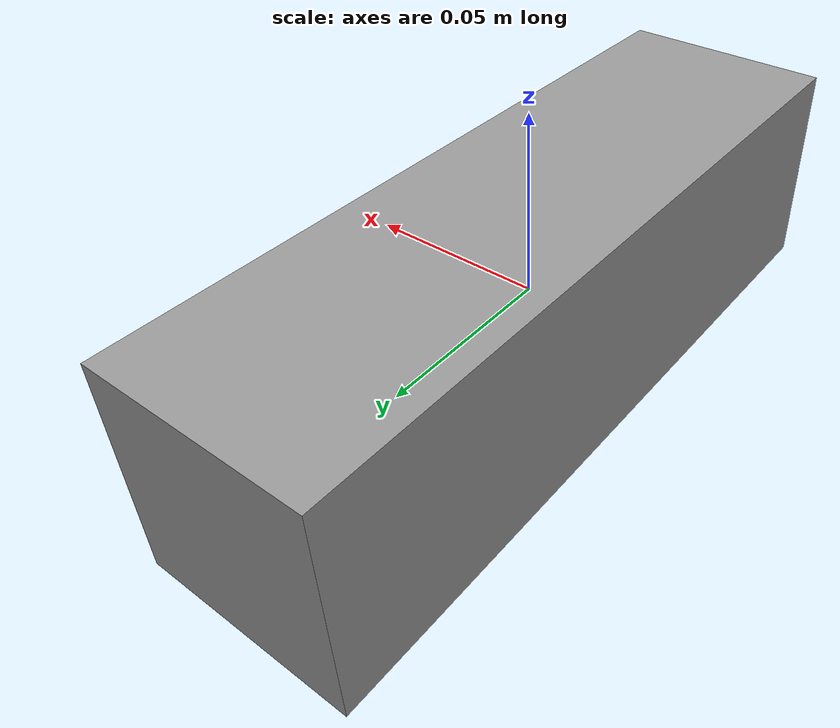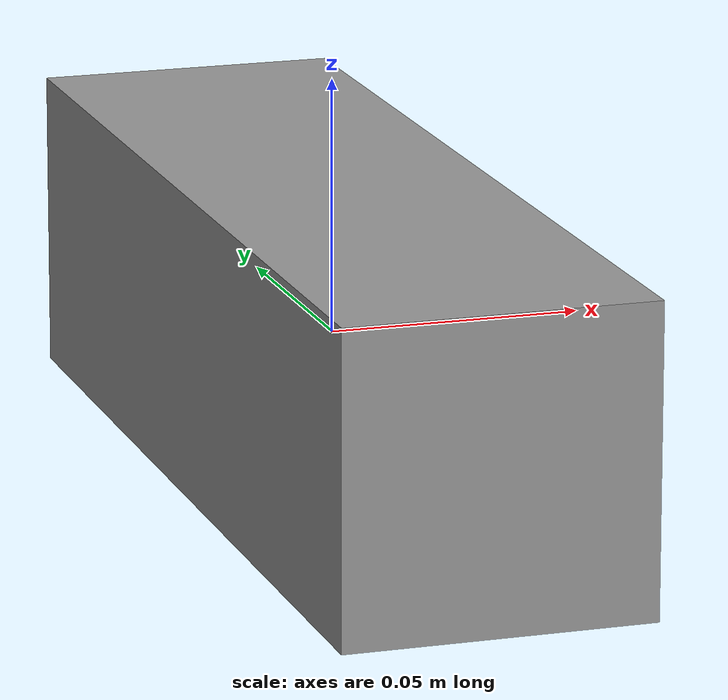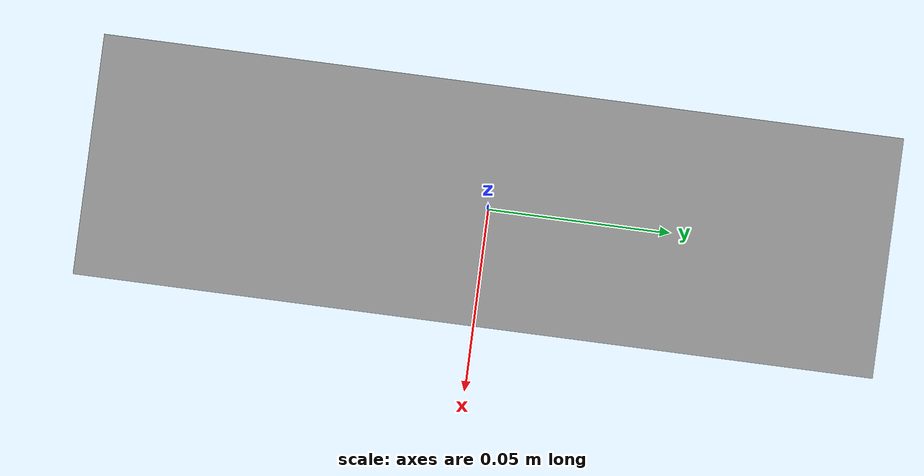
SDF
<?xml version="1.0" ?>
<sdf version="1.5">
    <model name="lrf">
    <static>false</static>

    <link name="lrf_phantom_base">
    </link>

    <joint name="lrf_phantom_base_to_lrf" type="fixed">
        <parent>lrf_phantom_base</parent>
        <child>lrf_lrf</child>
    </joint>

    <link name="lrf_lrf">

        <collision name="collision">
            <geometry>
                <box>
                    <size>0.06 0.20 0.06</size>
                </box>
            </geometry>
        </collision>

        <intertial>
            <mass>1.5</mass>
        </intertial>

        <visual name="visual-lrf">
            <geometry>
                <box>
                    <size>0.06 0.20 0.06</size>
                </box>
            </geometry>
            <material>
                <script>
                    <uri>file://media/materials/scripts/gazebo.material</uri>
                    <name>Gazebo/Grey</name>
                </script>
            </material>
        </visual>

    </link>

    <joint name="lrf_phantom_base_to_sensor" type="fixed">
        <parent>lrf_phantom_base</parent>
        <child>lrf_sensor</child>
    </joint>

    <link name="lrf_sensor">
        <pose>0 0 0 0 0 0</pose>
        <!-- Add a ray sensor, and give it a name -->
        <sensor type="ray" name="lrf_ray_sensor">

            <pose>0.0 0.2 0.0 0 0 1.5707</pose>

            <!-- Enable visualization to see the rays in the GUI -->
            <visualize>true</visualize>

            <!-- Set the update rate of the sensor -->
            <update_rate>1</update_rate>

            <ray>

                <!-- The scan element contains the horizontal and vertical beams.
                    We are leaving out the vertical beams for this tutorial. -->
                <scan>

                    <!-- The horizontal beams -->
                    <horizontal>
                        <!-- The velodyne has 32 beams(samples) -->
                        <samples>1</samples>

                        <resolution>1</resolution>

                        <!-- Minimum angle in radians -->
                        <min_angle>0</min_angle>

                        <!-- Maximum angle in radians -->
                        <max_angle>0</max_angle>
                    </horizontal>
                </scan>

                <!-- Range defines characteristics of an individual beam -->
                <range>

                    <!-- Minimum distance of the beam -->
                    <min>0.05</min>

                    <!-- Maximum distance of the beam -->
                    <max>150</max>

                    <!-- Linear resolution of the beam -->
                    <resolution>0.02</resolution>
                </range>
            </ray>
        </sensor>
    </link>

    <plugin name="lrf_controller" filename="liblrf_controller.so">
        <topic_name_pub_status>
            lrf_status
        </topic_name_pub_status>

        <topic_name_sub_commands>
            lrf_command
        </topic_name_sub_commands>

        <topic_name_ray_sensor>
            /gazebo/default/pl1/lrf/lrf_sensor/lrf_ray_sensor/scan
        </topic_name_ray_sensor>

        <publish_rate>4</publish_rate>

    </plugin>
  </model>
</sdf>
